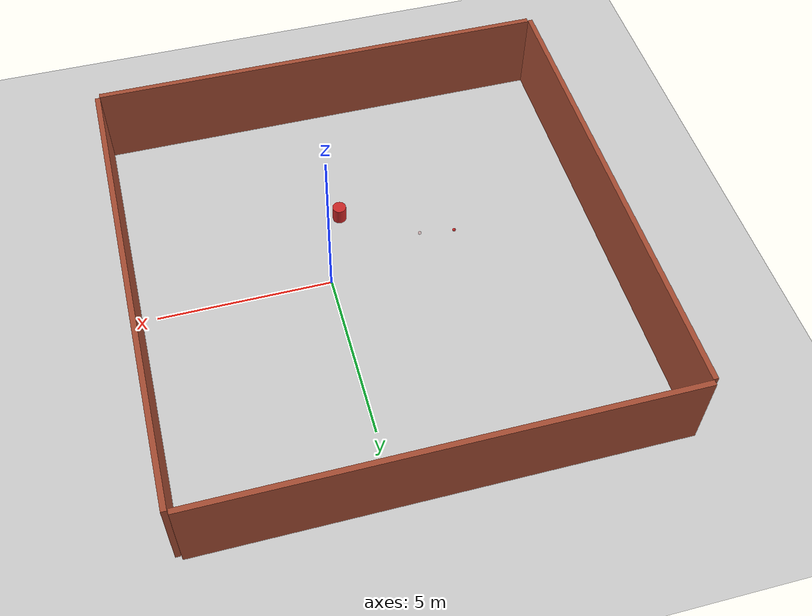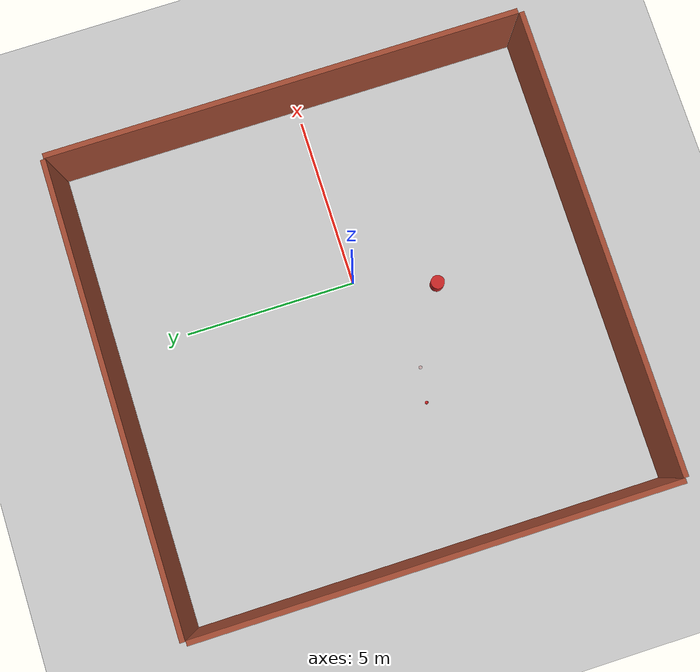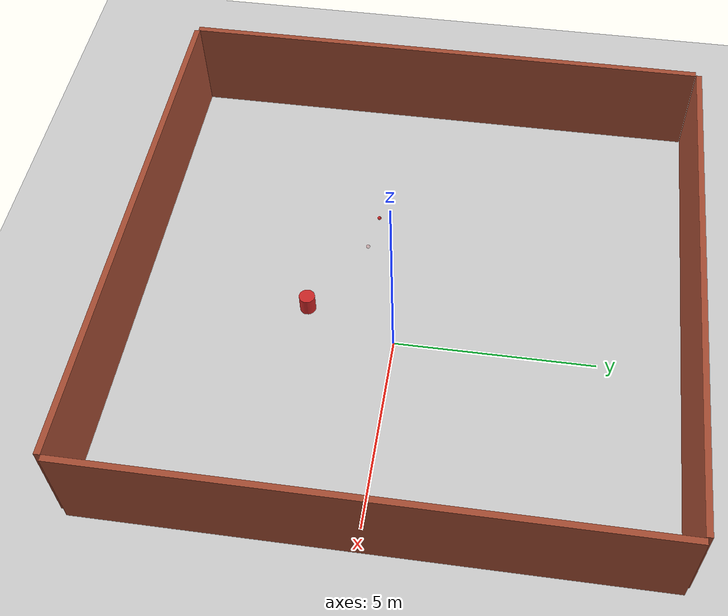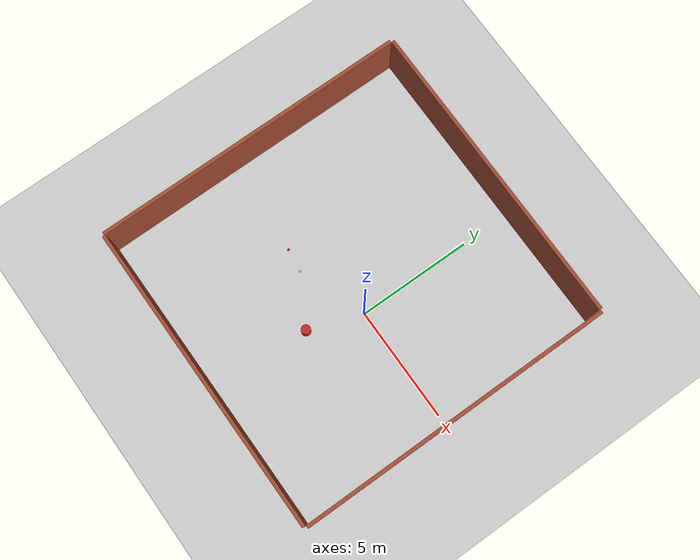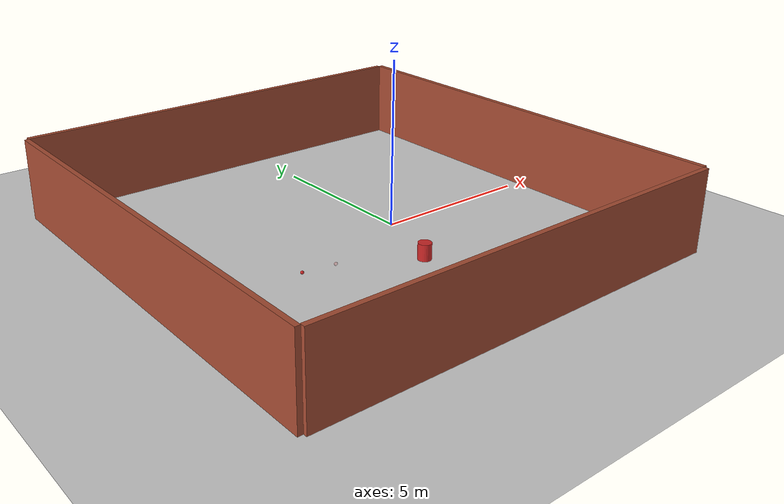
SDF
<sdf version="1.7">
 <world name="default">
  <model name="ground_plane">
   <static>1</static>
   <link name="link">
    <collision name="collision">
     <geometry><plane><normal>0 0 1</normal><size>100 100</size></plane></geometry>
     <surface>
      <contact><collide_bitmask>65535</collide_bitmask></contact>
      <friction><ode><mu>100</mu><mu2>50</mu2></ode></friction>
     </surface>
    </collision>
    <visual name="visual">
     <cast_shadows>0</cast_shadows>
     <geometry><plane><normal>0 0 1</normal><size>100 100</size></plane></geometry>
     <material>
      <script><uri>file://media/materials/scripts/gazebo.material</uri><name>Gazebo/Grey</name></script>
     </material>
    </visual>
   </link>
  </model>
  <model name="four_walls">
   <link name="Wall_4">
    <pose>-1.54097 7.13997 0 0 -0 0</pose>
    <inertial>
     <inertia><ixx>0</ixx><ixy>0</ixy><ixz>0</ixz><iyy>0</iyy><iyz>0</iyz><izz>0</izz></inertia>
     <mass>0</mass>
    </inertial>
    <visual name="Wall_4_Visual">
     <pose>0 0 1.25 0 -0 0</pose>
     <geometry><box><size>13.3867 0.15 2.5</size></box></geometry>
     <material>
      <script><uri>file://media/materials/scripts/gazebo.material</uri><name>Gazebo/Bricks</name></script>
      <shader type="pixel"/>
     </material>
    </visual>
    <collision name="Wall_4_Collision">
     <pose>0 0 1.25 0 -0 0</pose>
     <geometry><box><size>13.3867 0.15 2.5</size></box></geometry>
     <surface>
      <friction>
       <ode><mu>1</mu><mu2>1</mu2><fdir1>0 0 0</fdir1><slip1>0</slip1><slip2>0</slip2></ode>
       <torsional>
        <coefficient>1</coefficient>
        <patch_radius>0</patch_radius>
        <surface_radius>0</surface_radius>
        <use_patch_radius>1</use_patch_radius>
        <ode><slip>0</slip></ode>
       </torsional>
      </friction>
      <bounce><restitution_coefficient>0</restitution_coefficient><threshold>1e+06</threshold></bounce>
      <contact>
       <collide_without_contact>0</collide_without_contact>
       <collide_without_contact_bitmask>1</collide_without_contact_bitmask>
       <collide_bitmask>1</collide_bitmask>
       <ode>
        <soft_cfm>0</soft_cfm>
        <soft_erp>0.2</soft_erp>
        <kp>1e+13</kp>
        <kd>1</kd>
        <max_vel>0.01</max_vel>
        <min_depth>0</min_depth>
       </ode>
       <bullet>
        <split_impulse>1</split_impulse>
        <split_impulse_penetration_threshold>-0.01</split_impulse_penetration_threshold>
        <soft_cfm>0</soft_cfm>
        <soft_erp>0.2</soft_erp>
        <kp>1e+13</kp>
        <kd>1</kd>
       </bullet>
      </contact>
     </surface>
    </collision>
   </link>
   <link name="Wall_4_clone">
    <pose>-1.51314 -6.6153 0 0 -0 0</pose>
    <inertial>
     <inertia><ixx>0</ixx><ixy>0</ixy><ixz>0</ixz><iyy>0</iyy><iyz>0</iyz><izz>0</izz></inertia>
     <mass>0</mass>
    </inertial>
    <visual name="Wall_4_Visual">
     <pose>0 0 1.25 0 -0 0</pose>
     <geometry><box><size>13.3867 0.15 2.5</size></box></geometry>
     <material>
      <script><uri>file://media/materials/scripts/gazebo.material</uri><name>Gazebo/Bricks</name></script>
      <shader type="pixel"/>
     </material>
    </visual>
    <collision name="Wall_4_Collision">
     <pose>0 0 1.25 0 -0 0</pose>
     <geometry><box><size>13.3867 0.15 2.5</size></box></geometry>
     <surface>
      <friction>
       <ode><mu>1</mu><mu2>1</mu2><fdir1>0 0 0</fdir1><slip1>0</slip1><slip2>0</slip2></ode>
       <torsional>
        <coefficient>1</coefficient>
        <patch_radius>0</patch_radius>
        <surface_radius>0</surface_radius>
        <use_patch_radius>1</use_patch_radius>
        <ode><slip>0</slip></ode>
       </torsional>
      </friction>
      <bounce><restitution_coefficient>0</restitution_coefficient><threshold>1e+06</threshold></bounce>
      <contact>
       <collide_without_contact>0</collide_without_contact>
       <collide_without_contact_bitmask>1</collide_without_contact_bitmask>
       <collide_bitmask>1</collide_bitmask>
       <ode>
        <soft_cfm>0</soft_cfm>
        <soft_erp>0.2</soft_erp>
        <kp>1e+13</kp>
        <kd>1</kd>
        <max_vel>0.01</max_vel>
        <min_depth>0</min_depth>
       </ode>
       <bullet>
        <split_impulse>1</split_impulse>
        <split_impulse_penetration_threshold>-0.01</split_impulse_penetration_threshold>
        <soft_cfm>0</soft_cfm>
        <soft_erp>0.2</soft_erp>
        <kp>1e+13</kp>
        <kd>1</kd>
       </bullet>
      </contact>
     </surface>
    </collision>
   </link>
   <link name="Wall_6">
    <pose>5.24615 0.292041 0 0 0 -1.5708</pose>
    <inertial>
     <inertia><ixx>0</ixx><ixy>0</ixy><ixz>0</ixz><iyy>0</iyy><iyz>0</iyz><izz>0</izz></inertia>
     <mass>0</mass>
    </inertial>
    <visual name="Wall_6_Visual">
     <pose>0 0 1.25 0 -0 0</pose>
     <geometry><box><size>13.6388 0.15 2.5</size></box></geometry>
     <material>
      <script><uri>file://media/materials/scripts/gazebo.material</uri><name>Gazebo/Bricks</name></script>
      <shader type="pixel"/>
     </material>
    </visual>
    <collision name="Wall_6_Collision">
     <pose>0 0 1.25 0 -0 0</pose>
     <geometry><box><size>13.6388 0.15 2.5</size></box></geometry>
     <surface>
      <friction>
       <ode><mu>1</mu><mu2>1</mu2><fdir1>0 0 0</fdir1><slip1>0</slip1><slip2>0</slip2></ode>
       <torsional>
        <coefficient>1</coefficient>
        <patch_radius>0</patch_radius>
        <surface_radius>0</surface_radius>
        <use_patch_radius>1</use_patch_radius>
        <ode><slip>0</slip></ode>
       </torsional>
      </friction>
      <bounce><restitution_coefficient>0</restitution_coefficient><threshold>1e+06</threshold></bounce>
      <contact>
       <collide_without_contact>0</collide_without_contact>
       <collide_without_contact_bitmask>1</collide_without_contact_bitmask>
       <collide_bitmask>1</collide_bitmask>
       <ode>
        <soft_cfm>0</soft_cfm>
        <soft_erp>0.2</soft_erp>
        <kp>1e+13</kp>
        <kd>1</kd>
        <max_vel>0.01</max_vel>
        <min_depth>0</min_depth>
       </ode>
       <bullet>
        <split_impulse>1</split_impulse>
        <split_impulse_penetration_threshold>-0.01</split_impulse_penetration_threshold>
        <soft_cfm>0</soft_cfm>
        <soft_erp>0.2</soft_erp>
        <kp>1e+13</kp>
        <kd>1</kd>
       </bullet>
      </contact>
     </surface>
    </collision>
   </link>
   <link name="Wall_6_clone">
    <pose>-8.28501 0.233544 0 0 0 -1.5708</pose>
    <inertial>
     <inertia><ixx>0</ixx><ixy>0</ixy><ixz>0</ixz><iyy>0</iyy><iyz>0</iyz><izz>0</izz></inertia>
     <mass>0</mass>
    </inertial>
    <visual name="Wall_6_Visual">
     <pose>0 0 1.25 0 -0 0</pose>
     <geometry><box><size>13.6388 0.15 2.5</size></box></geometry>
     <material>
      <script><uri>file://media/materials/scripts/gazebo.material</uri><name>Gazebo/Bricks</name></script>
      <shader type="pixel"/>
     </material>
    </visual>
    <collision name="Wall_6_Collision">
     <pose>0 0 1.25 0 -0 0</pose>
     <geometry><box><size>13.6388 0.15 2.5</size></box></geometry>
     <surface>
      <friction>
       <ode><mu>1</mu><mu2>1</mu2><fdir1>0 0 0</fdir1><slip1>0</slip1><slip2>0</slip2></ode>
       <torsional>
        <coefficient>1</coefficient>
        <patch_radius>0</patch_radius>
        <surface_radius>0</surface_radius>
        <use_patch_radius>1</use_patch_radius>
        <ode><slip>0</slip></ode>
       </torsional>
      </friction>
      <bounce><restitution_coefficient>0</restitution_coefficient><threshold>1e+06</threshold></bounce>
      <contact>
       <collide_without_contact>0</collide_without_contact>
       <collide_without_contact_bitmask>1</collide_without_contact_bitmask>
       <collide_bitmask>1</collide_bitmask>
       <ode>
        <soft_cfm>0</soft_cfm>
        <soft_erp>0.2</soft_erp>
        <kp>1e+13</kp>
        <kd>1</kd>
        <max_vel>0.01</max_vel>
        <min_depth>0</min_depth>
       </ode>
       <bullet>
        <split_impulse>1</split_impulse>
        <split_impulse_penetration_threshold>-0.01</split_impulse_penetration_threshold>
        <soft_cfm>0</soft_cfm>
        <soft_erp>0.2</soft_erp>
        <kp>1e+13</kp>
        <kd>1</kd>
       </bullet>
      </contact>
     </surface>
    </collision>
   </link>
   <static>1</static>
   <pose>0.25242 -0.01683 0 0 -0 0</pose>
  </model>
  <model name="red_cylinder_0.5r">
   <link name="link">
    <inertial>
     <mass>1</mass>
     <inertia><ixx>0.145833</ixx><ixy>0</ixy><ixz>0</ixz><iyy>0.145833</iyy><iyz>0</iyz><izz>0.125</izz></inertia>
    </inertial>
    <visual name="visual">
     <geometry><cylinder><radius>0.2</radius><length>0.5</length></cylinder></geometry>
     <material>
      <script><name>Gazebo/Red</name><uri>file://media/materials/scripts/gazebo.material</uri></script>
      <shader type="pixel"><normal_map>__default__</normal_map></shader>
      <ambient>1 0 0 1</ambient>
      <diffuse>0.7 0.7 0.7 1</diffuse>
      <specular>0.01 0.01 0.01 1</specular>
      <emissive>0 0 0 1</emissive>
     </material>
    </visual>
    <collision name="collision">
     <geometry><cylinder><radius>0.25</radius><length>0.5</length></cylinder></geometry>
     <surface>
      <friction>
       <ode><mu>1</mu><mu2>1</mu2><fdir1>0 0 0</fdir1><slip1>0</slip1><slip2>0</slip2></ode>
       <torsional>
        <coefficient>1</coefficient>
        <patch_radius>0</patch_radius>
        <surface_radius>0</surface_radius>
        <use_patch_radius>1</use_patch_radius>
        <ode><slip>0</slip></ode>
       </torsional>
      </friction>
      <bounce><restitution_coefficient>0</restitution_coefficient><threshold>1e+06</threshold></bounce>
      <contact>
       <collide_without_contact>0</collide_without_contact>
       <collide_without_contact_bitmask>1</collide_without_contact_bitmask>
       <collide_bitmask>1</collide_bitmask>
       <ode>
        <soft_cfm>0</soft_cfm>
        <soft_erp>0.2</soft_erp>
        <kp>1e+13</kp>
        <kd>1</kd>
        <max_vel>0.01</max_vel>
        <min_depth>0</min_depth>
       </ode>
       <bullet>
        <split_impulse>1</split_impulse>
        <split_impulse_penetration_threshold>-0.01</split_impulse_penetration_threshold>
        <soft_cfm>0</soft_cfm>
        <soft_erp>0.2</soft_erp>
        <kp>1e+13</kp>
        <kd>1</kd>
       </bullet>
      </contact>
     </surface>
    </collision>
   </link>
   <static>0</static>
   <pose>-0.778012 -2.2943 0.25 0 -0 0</pose>
  </model>
  <model name="new_ball">
   <link name="link">
    <inertial>
     <mass>1</mass>
     <inertia><ixx>0.1</ixx><ixy>0</ixy><ixz>0</ixz><iyy>0.1</iyy><iyz>0</iyz><izz>0.1</izz></inertia>
    </inertial>
    <visual name="visual">
     <geometry><sphere><radius>0.05</radius></sphere></geometry>
     <material>
      <script><name>Gazebo/Red</name><uri>file://media/materials/scripts/gazebo.material</uri></script>
      <shader type="pixel"><normal_map>__default__</normal_map></shader>
      <ambient>1 0 0 1</ambient>
      <diffuse>1 0 0 1</diffuse>
      <specular>0.1 0.1 0.1 1</specular>
      <emissive>0 0 0 1</emissive>
     </material>
    </visual>
    <collision name="collision">
     <geometry><sphere><radius>0.05</radius></sphere></geometry>
     <surface>
      <friction>
       <ode><mu>1</mu><mu2>1</mu2><fdir1>0 0 0</fdir1><slip1>0</slip1><slip2>0</slip2></ode>
       <torsional>
        <coefficient>1</coefficient>
        <patch_radius>0</patch_radius>
        <surface_radius>0</surface_radius>
        <use_patch_radius>1</use_patch_radius>
        <ode><slip>0</slip></ode>
       </torsional>
      </friction>
      <bounce><restitution_coefficient>0</restitution_coefficient><threshold>1e+06</threshold></bounce>
      <contact>
       <collide_without_contact>0</collide_without_contact>
       <collide_without_contact_bitmask>1</collide_without_contact_bitmask>
       <collide_bitmask>1</collide_bitmask>
       <ode>
        <soft_cfm>0</soft_cfm>
        <soft_erp>0.2</soft_erp>
        <kp>1e+13</kp>
        <kd>1</kd>
        <max_vel>0.01</max_vel>
        <min_depth>0</min_depth>
       </ode>
       <bullet>
        <split_impulse>1</split_impulse>
        <split_impulse_penetration_threshold>-0.01</split_impulse_penetration_threshold>
        <soft_cfm>0</soft_cfm>
        <soft_erp>0.2</soft_erp>
        <kp>1e+13</kp>
        <kd>1</kd>
       </bullet>
      </contact>
     </surface>
    </collision>
   </link>
   <static>0</static>
   <pose>-3.94176 -0.953851 0.05 0 -0 0</pose>
  </model>
  <model name="black_ball_transparent">
   <link name="link">
    <inertial>
     <mass>1</mass>
     <inertia><ixx>0.1</ixx><ixy>0</ixy><ixz>0</ixz><iyy>0.1</iyy><iyz>0</iyz><izz>0.1</izz></inertia>
    </inertial>
    <visual name="visual">
     <geometry><sphere><radius>0.05</radius></sphere></geometry>
     <material>
      <script><name>Gazebo/Red</name><uri>file://media/materials/scripts/gazebo.material</uri></script>
      <shader type="pixel"><normal_map>__default__</normal_map></shader>
      <ambient>0 0 0 1</ambient>
      <diffuse>0 0 0 1</diffuse>
      <specular>0.1 0.1 0.1 1</specular>
      <emissive>0 0 0 1</emissive>
     </material>
     <transparency>0.9</transparency>
    </visual>
    <collision name="collision">
     <geometry><sphere><radius>0.05</radius></sphere></geometry>
     <surface>
      <friction>
       <ode><mu>1</mu><mu2>1</mu2><fdir1>0 0 0</fdir1><slip1>0</slip1><slip2>0</slip2></ode>
       <torsional>
        <coefficient>1</coefficient>
        <patch_radius>0</patch_radius>
        <surface_radius>0</surface_radius>
        <use_patch_radius>1</use_patch_radius>
        <ode><slip>0</slip></ode>
       </torsional>
      </friction>
      <bounce><restitution_coefficient>0</restitution_coefficient><threshold>1e+06</threshold></bounce>
      <contact>
       <collide_without_contact>0</collide_without_contact>
       <collide_without_contact_bitmask>1</collide_without_contact_bitmask>
       <collide_bitmask>1</collide_bitmask>
       <ode>
        <soft_cfm>0</soft_cfm>
        <soft_erp>0.2</soft_erp>
        <kp>1e+13</kp>
        <kd>1</kd>
        <max_vel>0.01</max_vel>
        <min_depth>0</min_depth>
       </ode>
       <bullet>
        <split_impulse>1</split_impulse>
        <split_impulse_penetration_threshold>-0.01</split_impulse_penetration_threshold>
        <soft_cfm>0</soft_cfm>
        <soft_erp>0.2</soft_erp>
        <kp>1e+13</kp>
        <kd>1</kd>
       </bullet>
      </contact>
     </surface>
    </collision>
   </link>
   <static>0</static>
   <pose>-2.92567 -1.09784 0.05 0 -0 0</pose>
  </model>
 </world>
</sdf>
